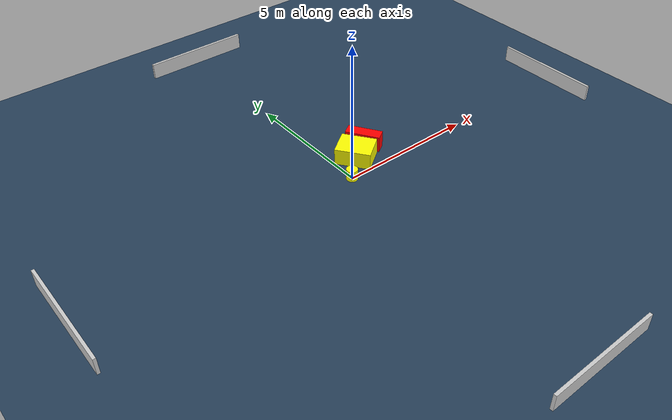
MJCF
<?xml version="1.0" ?>
<mujoco model="generated_environment">
  <option timestep="0.01" integrator="RK4" cone="elliptic"/>
  <default>
    <geom density="1"/>
  </default>
  <asset>
    <texture builtin="gradient" height="3072" name="skybox" rgb1="0.3 0.5 0.7" rgb2="0 0 0" type="skybox" width="512"/>
    <texture builtin="checker" height="300" name="groundplane" rgb1="0.2 0.3 0.4" rgb2="0.1 0.2 0.3" type="2d" width="300"/>
    <material name="groundplane" reflectance="0.2" texrepeat="5 5" texture="groundplane"/>
  </asset>
  <worldbody>
    <light dir="0 0 -1" directional="true" pos="0 0 1.5"/>
    <geom condim="3" friction="0.5 0.005 0.001" material="groundplane" name="floor" pos="0 0 0" size="0 0 0.05" type="plane"/>
    <body name="walls">
      <geom name="wall_1" condim="4" pos="-10.0 0.0 0.3" rgba="0.800000011920929 0.800000011920929 0.800000011920929 1.0" size="0.05 2.0 0.3" type="box"/>
      <geom name="wall_2" condim="4" pos="10.0 0.0 0.3" rgba="0.800000011920929 0.800000011920929 0.800000011920929 1.0" size="0.05 2.0 0.3" type="box"/>
      <geom name="wall_3" condim="4" pos="0.0 -10.0 0.3" rgba="0.800000011920929 0.800000011920929 0.800000011920929 1.0" size="2.0 0.05 0.3" type="box"/>
      <geom name="wall_4" condim="4" pos="0.0 10.0 0.3" rgba="0.800000011920929 0.800000011920929 0.800000011920929 1.0" size="2.0 0.05 0.3" type="box"/>
    </body>
    <body name="robot">
      <joint name="joint_x" type="slide" pos="0 0 0" axis="1 0 0"/>
      <joint name="joint_y" type="slide" pos="0 0 0" axis="0 1 0"/>
      <geom name="robot" type="cylinder" pos="0.0 0.0 0.2" size="0.2 0.2 0.0" mass="5.0" friction="1.0 0.005 0.0001" condim="4" rgba="1.0 1.0 0.0 1.0"/>
    </body>
    <body name="obstacle_1_movable">
      <geom name="obstacle_1_movable" condim="4" pos="0.8114446569030836 0.7762684572257205 0.3" euler="0 0 215.52760697583884" friction="0.0 0.005 0.001" rgba="1.0 1.0 0.0 1.0" size="0.4931025002880258 0.6298758870439265 0.3" type="box" mass="0.1"/>
      <joint type="free"/>
    </body>
    <body name="obstacle_2_static">
      <geom name="obstacle_2_static" condim="4" pos="1.5110554461718715 1.1843270352503175 0.3" euler="0 0 32.46619406906912" friction="0.0 0.005 0.001" rgba="1.0 0.0 0.0 1.0" size="0.21194544420977177 0.6250594528527501 0.3" type="box"/>
    </body>
  </worldbody>
  <actuator>
    <motor name="actuator_x" joint="joint_x" gear="1" ctrlrange="-1 1"/>
    <motor name="actuator_y" joint="joint_y" gear="1" ctrlrange="-1 1"/>
  </actuator>
</mujoco>
